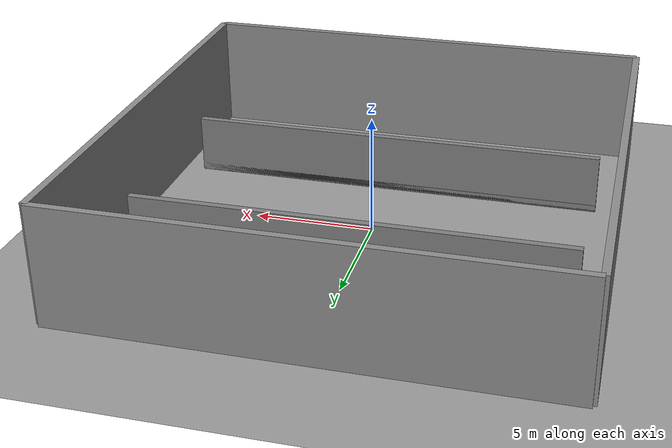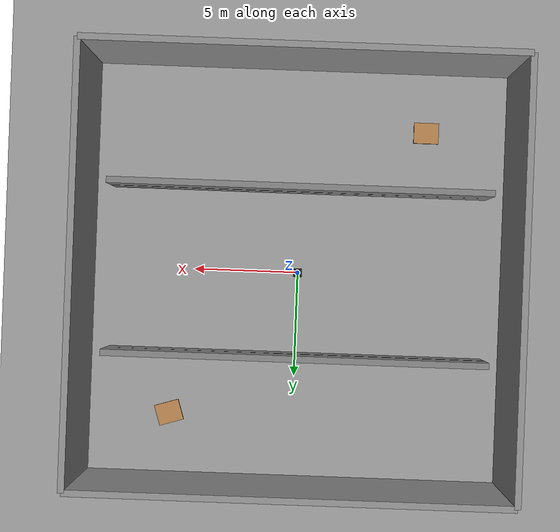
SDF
<?xml version="1.0" ?>
<sdf version="1.8">
  <world name="warehouse">
    <!-- Physics -->
    <physics name="default_physics" type="ode">
      <max_step_size>0.001</max_step_size>
      <real_time_factor>1.0</real_time_factor>
    </physics>

    <!-- Industrial lighting -->
    <light type="directional" name="sun">
      <cast_shadows>true</cast_shadows>
      <pose>0 0 10 0 0 0</pose>
      <diffuse>0.8 0.8 0.8 1</diffuse>
      <specular>0.2 0.2 0.2 1</specular>
      <attenuation>
        <range>1000</range>
        <constant>0.9</constant>
        <linear>0.01</linear>
        <quadratic>0.001</quadratic>
      </attenuation>
      <direction>-0.5 0.1 -0.9</direction>
    </light>

    <!-- Ground plane (concrete) -->
    <model name="ground_plane">
      <static>true</static>
      <link name="link">
        <collision name="collision">
          <geometry>
            <plane>
              <normal>0 0 1</normal>
              <size>100 100</size>
            </plane>
          </geometry>
        </collision>
        <visual name="visual">
          <geometry>
            <plane>
              <normal>0 0 1</normal>
              <size>100 100</size>
            </plane>
          </geometry>
          <material>
            <ambient>0.55 0.55 0.55 1</ambient>
            <diffuse>0.6 0.6 0.6 1</diffuse>
            <specular>0.2 0.2 0.2 1</specular>
          </material>
        </visual>
      </link>
    </model>

    <!-- Warehouse walls -->
    <model name="walls">
      <static>true</static>
      <!-- Back wall -->
      <link name="back_wall">
        <pose>0 -10 2.5 0 0 0</pose>
        <collision name="collision">
          <geometry>
            <box>
              <size>20 0.3 5</size>
            </box>
          </geometry>
        </collision>
        <visual name="visual">
          <geometry>
            <box>
              <size>20 0.3 5</size>
            </box>
          </geometry>
          <material>
            <ambient>0.5 0.5 0.5 1</ambient>
            <diffuse>0.55 0.55 0.55 1</diffuse>
            <specular>0.2 0.2 0.2 1</specular>
          </material>
        </visual>
      </link>
      <!-- Right wall -->
      <link name="right_wall">
        <pose>10 0 2.5 0 0 0</pose>
        <collision name="collision">
          <geometry>
            <box>
              <size>0.3 20 5</size>
            </box>
          </geometry>
        </collision>
        <visual name="visual">
          <geometry>
            <box>
              <size>0.3 20 5</size>
            </box>
          </geometry>
          <material>
            <ambient>0.5 0.5 0.5 1</ambient>
            <diffuse>0.55 0.55 0.55 1</diffuse>
            <specular>0.2 0.2 0.2 1</specular>
          </material>
        </visual>
      </link>
      <!-- Left wall -->
      <link name="left_wall">
        <pose>-10 0 2.5 0 0 0</pose>
        <collision name="collision">
          <geometry>
            <box>
              <size>0.3 20 5</size>
            </box>
          </geometry>
        </collision>
        <visual name="visual">
          <geometry>
            <box>
              <size>0.3 20 5</size>
            </box>
          </geometry>
          <material>
            <ambient>0.5 0.5 0.5 1</ambient>
            <diffuse>0.55 0.55 0.55 1</diffuse>
            <specular>0.2 0.2 0.2 1</specular>
          </material>
        </visual>
      </link>
      <!-- Front wall -->
      <link name="front_wall">
        <pose>0 10 2.5 0 0 0</pose>
        <collision name="collision">
          <geometry>
            <box>
              <size>20 0.3 5</size>
            </box>
          </geometry>
        </collision>
        <visual name="visual">
          <geometry>
            <box>
              <size>20 0.3 5</size>
            </box>
          </geometry>
          <material>
            <ambient>0.5 0.5 0.5 1</ambient>
            <diffuse>0.55 0.55 0.55 1</diffuse>
            <specular>0.2 0.2 0.2 1</specular>
          </material>
        </visual>
      </link>
    </model>

    <!-- Shelving units - 2 rows -->
    <model name="shelving_row_1">
      <static>true</static>
      <pose>0 -4 0 0 0 0</pose>
      <!-- Back panel -->
      <link name="back">
        <pose>0 0 1.25 0 0 0</pose>
        <collision name="collision">
          <geometry>
            <box>
              <size>18 0.3 2.5</size>
            </box>
          </geometry>
        </collision>
        <visual name="visual">
          <geometry>
            <box>
              <size>18 0.3 2.5</size>
            </box>
          </geometry>
          <material>
            <ambient>0.4 0.4 0.4 1</ambient>
            <diffuse>0.5 0.5 0.5 1</diffuse>
            <specular>0.2 0.2 0.2 1</specular>
          </material>
        </visual>
      </link>
      <!-- Shelves -->
      <link name="shelf_base">
        <pose>0 0 0.15 0 0 0</pose>
        <collision name="collision">
          <geometry>
            <box>
              <size>18 0.3 0.3</size>
            </box>
          </geometry>
        </collision>
        <visual name="visual">
          <geometry>
            <box>
              <size>18 0.3 0.3</size>
            </box>
          </geometry>
          <material>
            <ambient>0.4 0.4 0.4 1</ambient>
            <diffuse>0.5 0.5 0.5 1</diffuse>
            <specular>0.2 0.2 0.2 1</specular>
          </material>
        </visual>
      </link>
      <link name="shelf_mid">
        <pose>0 0 1.25 0 0 0</pose>
        <collision name="collision">
          <geometry>
            <box>
              <size>18 0.3 0.2</size>
            </box>
          </geometry>
        </collision>
        <visual name="visual">
          <geometry>
            <box>
              <size>18 0.3 0.2</size>
            </box>
          </geometry>
          <material>
            <ambient>0.4 0.4 0.4 1</ambient>
            <diffuse>0.5 0.5 0.5 1</diffuse>
            <specular>0.2 0.2 0.2 1</specular>
          </material>
        </visual>
      </link>
    </model>

    <model name="shelving_row_2">
      <static>true</static>
      <pose>0 4 0 0 0 0</pose>
      <!-- Back panel -->
      <link name="back">
        <pose>0 0 1.25 0 0 0</pose>
        <collision name="collision">
          <geometry>
            <box>
              <size>18 0.3 2.5</size>
            </box>
          </geometry>
        </collision>
        <visual name="visual">
          <geometry>
            <box>
              <size>18 0.3 2.5</size>
            </box>
          </geometry>
          <material>
            <ambient>0.4 0.4 0.4 1</ambient>
            <diffuse>0.5 0.5 0.5 1</diffuse>
            <specular>0.2 0.2 0.2 1</specular>
          </material>
        </visual>
      </link>
      <!-- Shelves -->
      <link name="shelf_base">
        <pose>0 0 0.15 0 0 0</pose>
        <collision name="collision">
          <geometry>
            <box>
              <size>18 0.3 0.3</size>
            </box>
          </geometry>
        </collision>
        <visual name="visual">
          <geometry>
            <box>
              <size>18 0.3 0.3</size>
            </box>
          </geometry>
          <material>
            <ambient>0.4 0.4 0.4 1</ambient>
            <diffuse>0.5 0.5 0.5 1</diffuse>
            <specular>0.2 0.2 0.2 1</specular>
          </material>
        </visual>
      </link>
      <link name="shelf_mid">
        <pose>0 0 1.25 0 0 0</pose>
        <collision name="collision">
          <geometry>
            <box>
              <size>18 0.3 0.2</size>
            </box>
          </geometry>
        </collision>
        <visual name="visual">
          <geometry>
            <box>
              <size>18 0.3 0.2</size>
            </box>
          </geometry>
          <material>
            <ambient>0.4 0.4 0.4 1</ambient>
            <diffuse>0.5 0.5 0.5 1</diffuse>
            <specular>0.2 0.2 0.2 1</specular>
          </material>
        </visual>
      </link>
    </model>

    <!-- Scattered pallets -->
    <model name="pallet1">
      <static>true</static>
      <pose>-6 -7 0 0 0 0</pose>
      <link name="body">
        <collision name="collision">
          <geometry>
            <box>
              <size>1.2 1 0.15</size>
            </box>
          </geometry>
        </collision>
        <visual name="visual">
          <geometry>
            <box>
              <size>1.2 1 0.15</size>
            </box>
          </geometry>
          <material>
            <ambient>0.6 0.4 0.2 1</ambient>
            <diffuse>0.7 0.5 0.3 1</diffuse>
            <specular>0.1 0.1 0.1 1</specular>
          </material>
        </visual>
      </link>
    </model>

    <model name="pallet2">
      <static>true</static>
      <pose>6 7 0 0 0 0.3</pose>
      <link name="body">
        <collision name="collision">
          <geometry>
            <box>
              <size>1.2 1 0.15</size>
            </box>
          </geometry>
        </collision>
        <visual name="visual">
          <geometry>
            <box>
              <size>1.2 1 0.15</size>
            </box>
          </geometry>
          <material>
            <ambient>0.6 0.4 0.2 1</ambient>
            <diffuse>0.7 0.5 0.3 1</diffuse>
            <specular>0.1 0.1 0.1 1</specular>
          </material>
        </visual>
      </link>
    </model>

    <!-- Robot -->
    <model name="robot">
      <pose>0 0 0 0 0 0</pose>
      <link name="base_link">
        <inertial>
          <mass>10.0</mass>
          <inertia>
            <ixx>0.1</ixx>
            <ixy>0</ixy>
            <ixz>0</ixz>
            <iyy>0.1</iyy>
            <iyz>0</iyz>
            <izz>0.1</izz>
          </inertia>
        </inertial>
        <collision name="base_collision">
          <geometry>
            <box>
              <size>0.4 0.4 0.25</size>
            </box>
          </geometry>
        </collision>
        <visual name="base_visual">
          <geometry>
            <box>
              <size>0.4 0.4 0.25</size>
            </box>
          </geometry>
          <material>
            <ambient>0 0 0 1</ambient>
            <diffuse>0.1 0.1 0.1 1</diffuse>
            <specular>0.3 0.3 0.3 1</specular>
          </material>
        </visual>
      </link>
      <!-- Front camera -->
      <link name="camera_front">
        <pose>0.2 0 0.15 0 0 0</pose>
        <sensor name="camera" type="camera">
          <camera>
            <horizontal_fov>1.57</horizontal_fov>
            <image>
              <width>1280</width>
              <height>720</height>
            </image>
            <clip>
              <near>0.1</near>
              <far>100</far>
            </clip>
          </camera>
          <always_on>1</always_on>
          <update_rate>30</update_rate>
        </sensor>
      </link>
    </model>

  </world>
</sdf>
